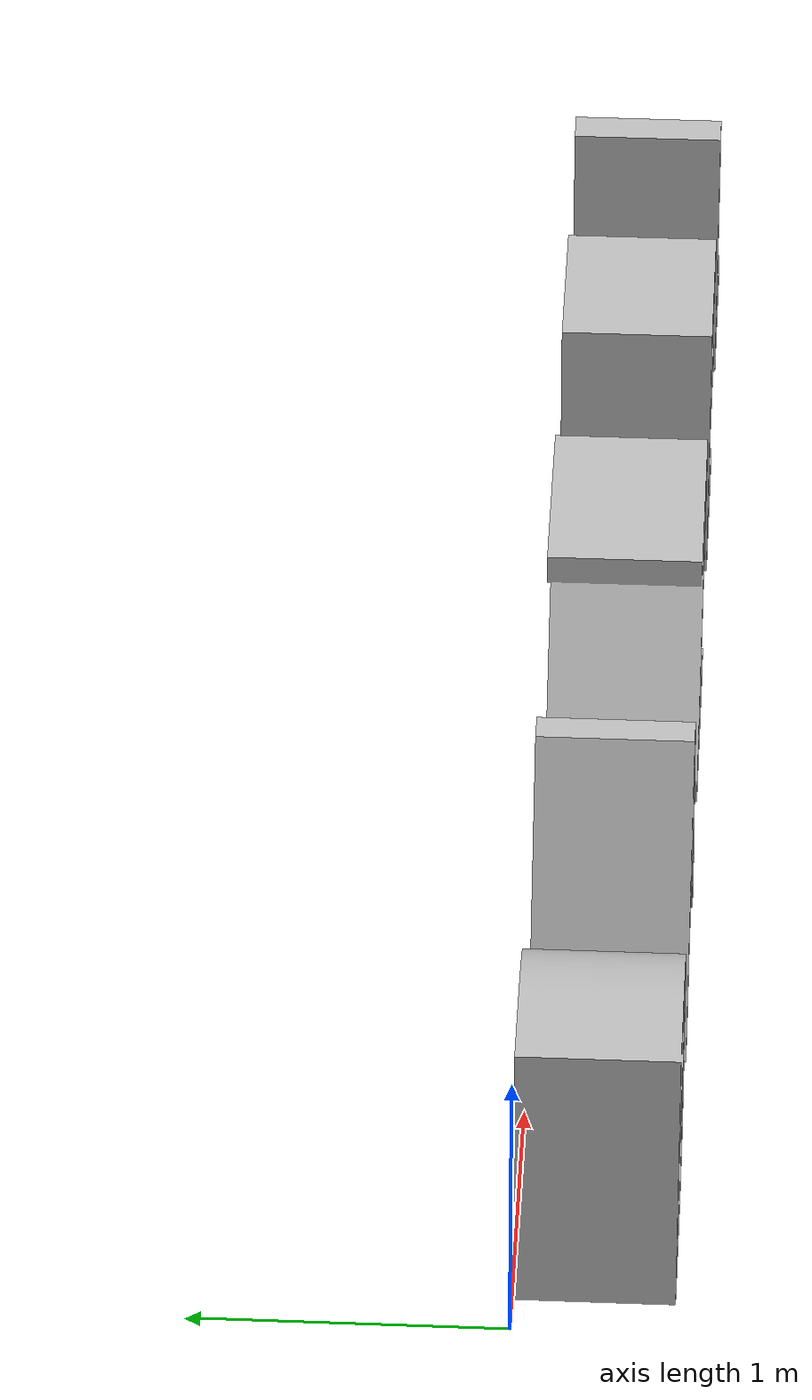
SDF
<?xml version="1.0" ?>
<sdf version="1.12">
  <model name="bazel">
    <link name="link">
      <inertial>
        <pose>2.5 -0.5 0 0 0 0</pose>
      </inertial>

      <collision name="collision_b">
        <geometry>
          <mesh optimization="convex_hull">
            <uri>B.gltf</uri>
          </mesh>
        </geometry>
      </collision>
      <visual name="visual_b">
        <geometry>
          <mesh>
            <uri>B.gltf</uri>
          </mesh>
        </geometry>
      </visual>

      <collision name="collision_a">
        <geometry>
          <mesh optimization="convex_hull">
            <uri>A.gltf</uri>
          </mesh>
        </geometry>
      </collision>
      <visual name="visual_a">
        <geometry>
          <mesh>
            <uri>A.gltf</uri>
          </mesh>
        </geometry>
      </visual>

      <collision name="collision_z">
        <geometry>
          <mesh optimization="convex_hull">
            <uri>Z.gltf</uri>
          </mesh>
        </geometry>
      </collision>
      <visual name="visual_z">
        <geometry>
          <mesh>
            <uri>Z.gltf</uri>
          </mesh>
        </geometry>
      </visual>

      <collision name="collision_e">
        <geometry>
          <mesh optimization="convex_hull">
            <uri>E.gltf</uri>
          </mesh>
        </geometry>
      </collision>
      <visual name="visual_e">
        <geometry>
          <mesh>
            <uri>E.gltf</uri>
          </mesh>
        </geometry>
      </visual>

      <collision name="collision_l">
        <geometry>
          <mesh optimization="convex_hull">
            <uri>L.gltf</uri>
          </mesh>
        </geometry>
      </collision>
      <visual name="visual_l">
        <geometry>
          <mesh>
            <uri>L.gltf</uri>
          </mesh>
        </geometry>
      </visual>

    </link>
  </model>
</sdf>
